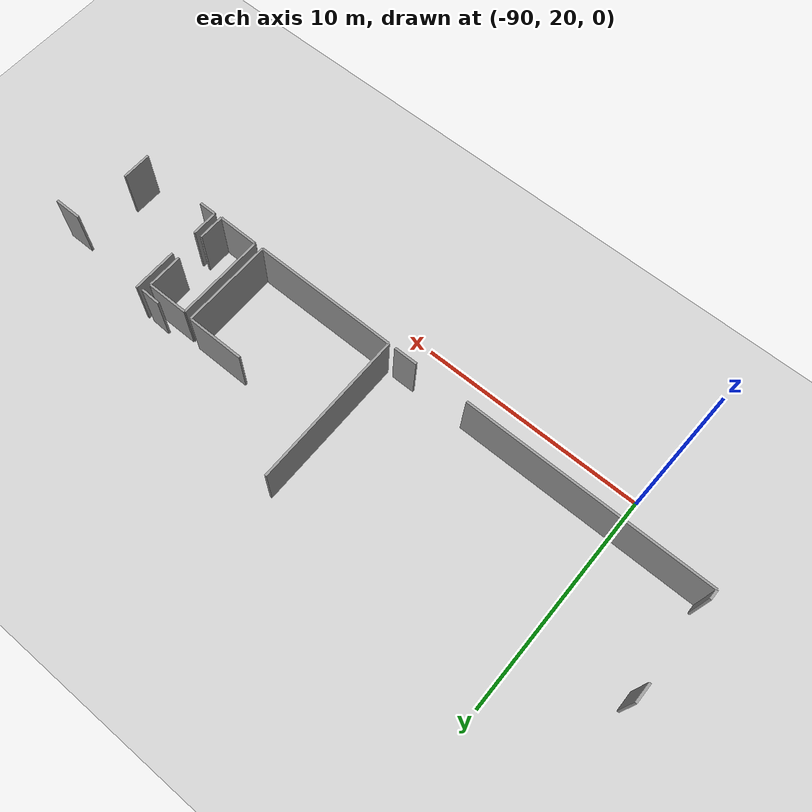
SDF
<sdf version="1.6">
 <world name="default">
  <model name="ground_plane">
   <static>1</static>
   <link name="link">
    <collision name="collision">
     <geometry><plane><normal>0 0 1</normal><size>100 100</size></plane></geometry>
     <surface><friction><ode><mu>100</mu><mu2>50</mu2></ode></friction></surface>
    </collision>
    <visual name="visual">
     <cast_shadows>0</cast_shadows>
     <geometry><plane><normal>0 0 1</normal><size>100 100</size></plane></geometry>
     <material>
      <script><uri>file://media/materials/scripts/gazebo.material</uri><name>Gazebo/Grey</name></script>
     </material>
    </visual>
   </link>
  </model>
  <model name="0510035740_A_40_1_103">
   <static>1</static>
   <link name="Wall_38">
    <collision name="Wall_38_Collision">
     <geometry><box><size>0.438824134058 0.1 2.5</size></box></geometry>
     <pose>0.219412067029 0 1.25 0 0 0</pose>
    </collision>
    <visual name="Wall_38_Visual">
     <pose>0.219412067029 0 1.25 0 0 0</pose>
     <geometry><box><size>0.438824134058 0.1 2.5</size></box></geometry>
     <material>
      <script><uri>file://media/materials/scripts/gazebo.material</uri><name>Gazebo/Grey</name></script>
      <ambient>1 1 1 1</ambient>
     </material>
    </visual>
    <pose>0.0786787053546 -27.8238358407 0 0 0 1.57079632679</pose>
   </link>
   <link name="Wall_39">
    <collision name="Wall_39_Collision">
     <geometry><box><size>0.868257583929 0.1 2.5</size></box></geometry>
     <pose>0.434128791965 0 1.25 0 0 0</pose>
    </collision>
    <visual name="Wall_39_Visual">
     <pose>0.434128791965 0 1.25 0 0 0</pose>
     <geometry><box><size>0.868257583929 0.1 2.5</size></box></geometry>
     <material>
      <script><uri>file://media/materials/scripts/gazebo.material</uri><name>Gazebo/Grey</name></script>
      <ambient>1 1 1 1</ambient>
     </material>
    </visual>
    <pose>0.0786787053546 -23.7114775734 0 0 0 1.57079632679</pose>
   </link>
   <link name="Wall_45">
    <collision name="Wall_45_Collision">
     <geometry><box><size>1.05429465175 0.1 2.5</size></box></geometry>
     <pose>0.527147325876 0 1.25 0 0 0</pose>
    </collision>
    <visual name="Wall_45_Visual">
     <pose>0.527147325876 0 1.25 0 0 0</pose>
     <geometry><box><size>1.05429465175 0.1 2.5</size></box></geometry>
     <material>
      <script><uri>file://media/materials/scripts/gazebo.material</uri><name>Gazebo/Grey</name></script>
      <ambient>1 1 1 1</ambient>
     </material>
    </visual>
    <pose>14.4987087809 -27.8418558022 0 0 0 3.14159265359</pose>
   </link>
   <link name="Wall_46">
    <collision name="Wall_46_Collision">
     <geometry><box><size>10.9736637742 0.1 2.5</size></box></geometry>
     <pose>5.48683188708 0 1.25 0 0 0</pose>
    </collision>
    <visual name="Wall_46_Visual">
     <pose>5.48683188708 0 1.25 0 0 0</pose>
     <geometry><box><size>10.9736637742 0.1 2.5</size></box></geometry>
     <material>
      <script><uri>file://media/materials/scripts/gazebo.material</uri><name>Gazebo/Grey</name></script>
      <ambient>1 1 1 1</ambient>
     </material>
    </visual>
    <pose>11.0523276841 -27.8418558022 0 0 0 3.13995054299</pose>
   </link>
   <link name="Wall_47">
    <collision name="Wall_47_Collision">
     <geometry><box><size>6.98971466279 0.1 2.5</size></box></geometry>
     <pose>3.4948573314 0 1.25 0 0 0</pose>
    </collision>
    <visual name="Wall_47_Visual">
     <pose>3.4948573314 0 1.25 0 0 0</pose>
     <geometry><box><size>6.98971466279 0.1 2.5</size></box></geometry>
     <material>
      <script><uri>file://media/materials/scripts/gazebo.material</uri><name>Gazebo/Grey</name></script>
      <ambient>1 1 1 1</ambient>
     </material>
    </visual>
    <pose>14.7987030704 -27.8314499089 0 0 0 1.57079632679</pose>
   </link>
   <link name="Wall_53">
    <collision name="Wall_53_Collision">
     <geometry><box><size>2.57228606054 0.1 2.5</size></box></geometry>
     <pose>1.28614303027 0 1.25 0 0 0</pose>
    </collision>
    <visual name="Wall_53_Visual">
     <pose>1.28614303027 0 1.25 0 0 0</pose>
     <geometry><box><size>2.57228606054 0.1 2.5</size></box></geometry>
     <material>
      <script><uri>file://media/materials/scripts/gazebo.material</uri><name>Gazebo/Grey</name></script>
      <ambient>1 1 1 1</ambient>
     </material>
    </visual>
    <pose>18.7326383381 -23.7338121736 0 0 0 0.0</pose>
   </link>
   <link name="Wall_54">
    <collision name="Wall_54_Collision">
     <geometry><box><size>4.10804362861 0.1 2.5</size></box></geometry>
     <pose>2.05402181431 0 1.25 0 0 0</pose>
    </collision>
    <visual name="Wall_54_Visual">
     <pose>2.05402181431 0 1.25 0 0 0</pose>
     <geometry><box><size>4.10804362861 0.1 2.5</size></box></geometry>
     <material>
      <script><uri>file://media/materials/scripts/gazebo.material</uri><name>Gazebo/Grey</name></script>
      <ambient>1 1 1 1</ambient>
     </material>
    </visual>
    <pose>21.3049243986 -23.7338121736 0 0 0 -1.57079632679</pose>
   </link>
   <link name="Wall_55">
    <collision name="Wall_55_Collision">
     <geometry><box><size>6.50622964974 0.1 2.5</size></box></geometry>
     <pose>3.25311482487 0 1.25 0 0 0</pose>
    </collision>
    <visual name="Wall_55_Visual">
     <pose>3.25311482487 0 1.25 0 0 0</pose>
     <geometry><box><size>6.50622964974 0.1 2.5</size></box></geometry>
     <material>
      <script><uri>file://media/materials/scripts/gazebo.material</uri><name>Gazebo/Grey</name></script>
      <ambient>1 1 1 1</ambient>
     </material>
    </visual>
    <pose>21.3049243986 -27.8418558022 0 0 0 3.1399932791</pose>
   </link>
   <link name="Wall_56">
    <collision name="Wall_56_Collision">
     <geometry><box><size>4.02403507547 0.1 2.5</size></box></geometry>
     <pose>2.01201753774 0 1.25 0 0 0</pose>
    </collision>
    <visual name="Wall_56_Visual">
     <pose>2.01201753774 0 1.25 0 0 0</pose>
     <geometry><box><size>4.02403507547 0.1 2.5</size></box></geometry>
     <material>
      <script><uri>file://media/materials/scripts/gazebo.material</uri><name>Gazebo/Grey</name></script>
      <ambient>1 1 1 1</ambient>
     </material>
    </visual>
    <pose>21.6879120321 -27.8276428748 0 0 0 1.57079632679</pose>
   </link>
   <link name="Wall_57">
    <collision name="Wall_57_Collision">
     <geometry><box><size>1.8585940623 0.1 2.5</size></box></geometry>
     <pose>0.929297031148 0 1.25 0 0 0</pose>
    </collision>
    <visual name="Wall_57_Visual">
     <pose>0.929297031148 0 1.25 0 0 0</pose>
     <geometry><box><size>1.8585940623 0.1 2.5</size></box></geometry>
     <material>
      <script><uri>file://media/materials/scripts/gazebo.material</uri><name>Gazebo/Grey</name></script>
      <ambient>1 1 1 1</ambient>
     </material>
    </visual>
    <pose>21.6879120321 -23.8036077993 0 0 0 0.0</pose>
   </link>
   <link name="Wall_58">
    <collision name="Wall_58_Collision">
     <geometry><box><size>1.59311688229 0.1 2.5</size></box></geometry>
     <pose>0.796558441146 0 1.25 0 0 0</pose>
    </collision>
    <visual name="Wall_58_Visual">
     <pose>0.796558441146 0 1.25 0 0 0</pose>
     <geometry><box><size>1.59311688229 0.1 2.5</size></box></geometry>
     <material>
      <script><uri>file://media/materials/scripts/gazebo.material</uri><name>Gazebo/Grey</name></script>
      <ambient>1 1 1 1</ambient>
     </material>
    </visual>
    <pose>23.5465060944 -23.8036077993 0 0 0 -1.57079632679</pose>
   </link>
   <link name="Wall_59">
    <collision name="Wall_59_Collision">
     <geometry><box><size>1.1824648008 0.1 2.5</size></box></geometry>
     <pose>0.591232400398 0 1.25 0 0 0</pose>
    </collision>
    <visual name="Wall_59_Visual">
     <pose>0.591232400398 0 1.25 0 0 0</pose>
     <geometry><box><size>1.1824648008 0.1 2.5</size></box></geometry>
     <material>
      <script><uri>file://media/materials/scripts/gazebo.material</uri><name>Gazebo/Grey</name></script>
      <ambient>1 1 1 1</ambient>
     </material>
    </visual>
    <pose>23.5465060944 -26.6604062105 0 0 0 -1.57079632679</pose>
   </link>
   <link name="Wall_60">
    <collision name="Wall_60_Collision">
     <geometry><box><size>1.85865644608 0.1 2.5</size></box></geometry>
     <pose>0.929328223038 0 1.25 0 0 0</pose>
    </collision>
    <visual name="Wall_60_Visual">
     <pose>0.929328223038 0 1.25 0 0 0</pose>
     <geometry><box><size>1.85865644608 0.1 2.5</size></box></geometry>
     <material>
      <script><uri>file://media/materials/scripts/gazebo.material</uri><name>Gazebo/Grey</name></script>
      <ambient>1 1 1 1</ambient>
     </material>
    </visual>
    <pose>23.5465060944 -27.8428710113 0 0 0 3.13339947355</pose>
   </link>
   <link name="Wall_65">
    <collision name="Wall_65_Collision">
     <geometry><box><size>0.90283787416 0.1 2.5</size></box></geometry>
     <pose>0.45141893708 0 1.25 0 0 0</pose>
    </collision>
    <visual name="Wall_65_Visual">
     <pose>0.45141893708 0 1.25 0 0 0</pose>
     <geometry><box><size>0.90283787416 0.1 2.5</size></box></geometry>
     <material>
      <script><uri>file://media/materials/scripts/gazebo.material</uri><name>Gazebo/Grey</name></script>
      <ambient>1 1 1 1</ambient>
     </material>
    </visual>
    <pose>23.6236619861 -23.4528530548 0 0 0 3.09884999067</pose>
   </link>
   <link name="Wall_75">
    <collision name="Wall_75_Collision">
     <geometry><box><size>1.20936784198 0.1 2.5</size></box></geometry>
     <pose>0.604683920991 0 1.25 0 0 0</pose>
    </collision>
    <visual name="Wall_75_Visual">
     <pose>0.604683920991 0 1.25 0 0 0</pose>
     <geometry><box><size>1.20936784198 0.1 2.5</size></box></geometry>
     <material>
      <script><uri>file://media/materials/scripts/gazebo.material</uri><name>Gazebo/Grey</name></script>
      <ambient>1 1 1 1</ambient>
     </material>
    </visual>
    <pose>27.9728177763 -24.1574081712 0 0 0 0.0</pose>
   </link>
   <link name="Wall_78">
    <collision name="Wall_78_Collision">
     <geometry><box><size>1.34337544336 0.1 2.5</size></box></geometry>
     <pose>0.67168772168 0 1.25 0 0 0</pose>
    </collision>
    <visual name="Wall_78_Visual">
     <pose>0.67168772168 0 1.25 0 0 0</pose>
     <geometry><box><size>1.34337544336 0.1 2.5</size></box></geometry>
     <material>
      <script><uri>file://media/materials/scripts/gazebo.material</uri><name>Gazebo/Grey</name></script>
      <ambient>1 1 1 1</ambient>
     </material>
    </visual>
    <pose>27.934747435 -26.7482217978 0 0 0 -1.57079632679</pose>
   </link>
   <link name="Wall_81">
    <collision name="Wall_81_Collision">
     <geometry><box><size>0.779172985286 0.1 2.5</size></box></geometry>
     <pose>0.389586492643 0 1.25 0 0 0</pose>
    </collision>
    <visual name="Wall_81_Visual">
     <pose>0.389586492643 0 1.25 0 0 0</pose>
     <geometry><box><size>0.779172985286 0.1 2.5</size></box></geometry>
     <material>
      <script><uri>file://media/materials/scripts/gazebo.material</uri><name>Gazebo/Grey</name></script>
      <ambient>1 1 1 1</ambient>
     </material>
    </visual>
    <pose>24.6584138627 -27.8091153087 0 0 0 3.14159265359</pose>
   </link>
   <link name="Wall_82">
    <collision name="Wall_82_Collision">
     <geometry><box><size>1.18500282355 0.1 2.5</size></box></geometry>
     <pose>0.592501411775 0 1.25 0 0 0</pose>
    </collision>
    <visual name="Wall_82_Visual">
     <pose>0.592501411775 0 1.25 0 0 0</pose>
     <geometry><box><size>1.18500282355 0.1 2.5</size></box></geometry>
     <material>
      <script><uri>file://media/materials/scripts/gazebo.material</uri><name>Gazebo/Grey</name></script>
      <ambient>1 1 1 1</ambient>
     </material>
    </visual>
    <pose>23.8792408774 -27.8091153087 0 0 0 1.57079632679</pose>
   </link>
   <link name="Wall_83">
    <collision name="Wall_83_Collision">
     <geometry><box><size>2.02026611169 0.1 2.5</size></box></geometry>
     <pose>1.01013305584 0 1.25 0 0 0</pose>
    </collision>
    <visual name="Wall_83_Visual">
     <pose>1.01013305584 0 1.25 0 0 0</pose>
     <geometry><box><size>2.02026611169 0.1 2.5</size></box></geometry>
     <material>
      <script><uri>file://media/materials/scripts/gazebo.material</uri><name>Gazebo/Grey</name></script>
      <ambient>1 1 1 1</ambient>
     </material>
    </visual>
    <pose>23.8792408774 -25.3840345679 0 0 0 1.57079632679</pose>
   </link>
   <pose>-93.95 49.6557238758 0 0 0 0</pose>
  </model>
 </world>
</sdf>
